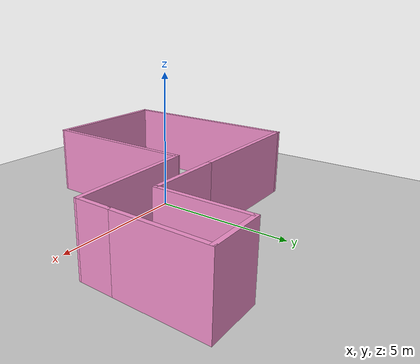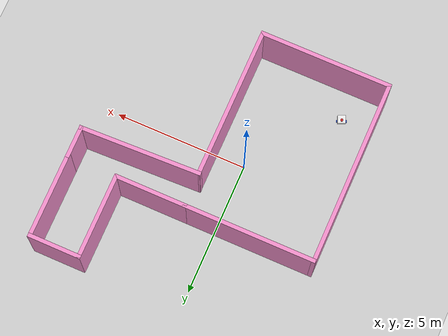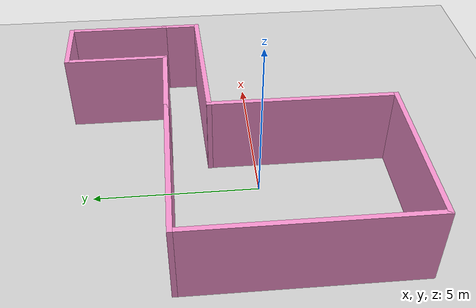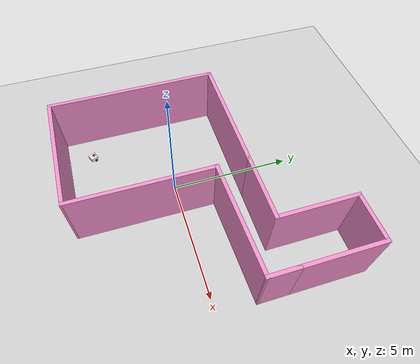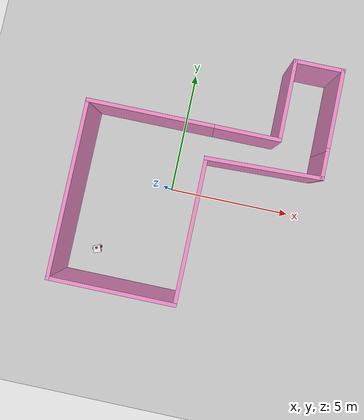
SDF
<sdf version="1.7">
 <world name="default">
  <light name="sun" type="directional">
   <pose>0 0 10 0 -0 0</pose>
   <diffuse>0.8 0.8 0.8 1</diffuse>
   <specular>0.2 0.2 0.2 1</specular>
   <attenuation>
    <range>1000</range>
    <constant>0.9</constant>
    <linear>0.01</linear>
    <quadratic>0.001</quadratic>
   </attenuation>
   <direction>-0.5 0.1 -0.9</direction>
   <spot><inner_angle>0</inner_angle><outer_angle>0</outer_angle><falloff>0</falloff></spot>
  </light>
  <model name="ground_plane">
   <static>1</static>
   <link name="link">
    <collision name="collision">
     <geometry><plane><normal>0 0 1</normal><size>100 100</size></plane></geometry>
     <surface><friction><ode><mu>100</mu><mu2>50</mu2></ode></friction></surface>
    </collision>
    <visual name="visual">
     <cast_shadows>0</cast_shadows>
     <geometry><plane><normal>0 0 1</normal><size>100 100</size></plane></geometry>
     <material>
      <script><uri>file://media/materials/scripts/gazebo.material</uri><name>Gazebo/Grey</name></script>
     </material>
    </visual>
   </link>
  </model>
  <gravity>0 0 -9.8</gravity>
  <magnetic_field>6e-06 2.3e-05 -4.2e-05</magnetic_field>
  <atmosphere type="adiabatic"/>
  <physics type="ode">
   <max_step_size>0.001</max_step_size>
   <real_time_factor>1</real_time_factor>
   <real_time_update_rate>1000</real_time_update_rate>
  </physics>
  <scene><ambient>0.4 0.4 0.4 1</ambient><background>0.7 0.7 0.7 1</background><shadows>1</shadows></scene>
  <audio><device>default</device></audio>
  <spherical_coordinates>
   <surface_model>EARTH_WGS84</surface_model>
   <latitude_deg>0</latitude_deg>
   <longitude_deg>0</longitude_deg>
   <elevation>0</elevation>
   <heading_deg>0</heading_deg>
  </spherical_coordinates>
  <model name="my_bot">
   <link name="base_link">
    <inertial>
     <pose>0.055714 0 0.078571 0 -0 0</pose>
     <mass>0.7</mass>
     <inertia>
      <ixx>0.0064169</ixx>
      <ixy>0</ixy>
      <ixz>0.00118929</ixz>
      <iyy>0.00745405</iyy>
      <iyz>0</iyz>
      <izz>0.00876214</izz>
     </inertia>
    </inertial>
    <collision name="base_link_fixed_joint_lump__chassis_collision">
     <pose>0.05 0 0.075 0 -0 0</pose>
     <geometry><box><size>0.3 0.3 0.15</size></box></geometry>
    </collision>
    <collision name="base_link_fixed_joint_lump__caster_wheel_collision_1">
     <pose>0.14 0 0 0 -0 0</pose>
     <geometry><sphere><radius>0.05</radius></sphere></geometry>
     <surface><friction><ode><mu>0.001</mu><mu2>0.001</mu2></ode></friction></surface>
    </collision>
    <collision name="base_link_fixed_joint_lump__laser_frame_collision_2">
     <pose>0 0 0.175 0 -0 0</pose>
     <geometry><cylinder><length>0.04</length><radius>0.05</radius></cylinder></geometry>
    </collision>
    <visual name="base_link_fixed_joint_lump__chassis_visual">
     <pose>0.05 0 0.075 0 -0 0</pose>
     <geometry><box><size>0.3 0.3 0.15</size></box></geometry>
     <material>
      <script><name>Gazebo/White</name><uri>file://media/materials/scripts/gazebo.material</uri></script>
     </material>
    </visual>
    <visual name="base_link_fixed_joint_lump__caster_wheel_visual_1">
     <pose>0.14 0 0 0 -0 0</pose>
     <geometry><sphere><radius>0.05</radius></sphere></geometry>
     <material>
      <script><name>Gazebo/Black</name><uri>file://media/materials/scripts/gazebo.material</uri></script>
     </material>
    </visual>
    <visual name="base_link_fixed_joint_lump__laser_frame_visual_2">
     <pose>0 0 0.175 0 -0 0</pose>
     <geometry><cylinder><length>0.04</length><radius>0.05</radius></cylinder></geometry>
     <material>
      <script><name>Gazebo/Red</name><uri>file://media/materials/scripts/gazebo.material</uri></script>
     </material>
    </visual>
    <sensor name="laser" type="ray">
     <visualize>1</visualize>
     <update_rate>10</update_rate>
     <ray>
      <scan>
       <horizontal>
        <samples>360</samples>
        <min_angle>-3.14</min_angle>
        <max_angle>3.14</max_angle>
        <resolution>1</resolution>
       </horizontal>
       <vertical><samples>1</samples><min_angle>0</min_angle><max_angle>0</max_angle></vertical>
      </scan>
      <range><min>0.3</min><max>12</max></range>
     </ray>
     <plugin name="laser_controller" filename="libgazebo_ros_ray_sensor.so">
      <ros><argument>~/out:=scan</argument></ros>
      <output_type>sensor_msgs/LaserScan</output_type>
      <frame_name>laser_frame</frame_name>
     </plugin>
     <pose>0 0 0.175 0 -0 0</pose>
    </sensor>
   </link>
   <joint name="left_wheel_joint" type="revolute">
    <pose relative_to="base_link">0 0.175 0 -1.5708 0 0</pose>
    <parent>base_link</parent>
    <child>left_wheel</child>
    <axis>
     <xyz>0 0 1</xyz>
     <limit><lower>-1e+16</lower><upper>1e+16</upper></limit>
     <dynamics><spring_reference>0</spring_reference><spring_stiffness>0</spring_stiffness></dynamics>
    </axis>
   </joint>
   <link name="left_wheel">
    <pose relative_to="left_wheel_joint">0 0 0 0 -0 0</pose>
    <inertial>
     <mass>0.1</mass>
     <inertia>
      <ixx>7.58333e-05</ixx>
      <ixy>0</ixy>
      <ixz>0</ixz>
      <iyy>7.58333e-05</iyy>
      <iyz>0</iyz>
      <izz>0.000125</izz>
     </inertia>
    </inertial>
    <collision name="left_wheel_collision">
     <geometry><cylinder><length>0.04</length><radius>0.05</radius></cylinder></geometry>
    </collision>
    <visual name="left_wheel_visual">
     <geometry><cylinder><length>0.04</length><radius>0.05</radius></cylinder></geometry>
     <material>
      <script><name>Gazebo/Blue</name><uri>file://media/materials/scripts/gazebo.material</uri></script>
     </material>
    </visual>
   </link>
   <joint name="right_wheel_joint" type="revolute">
    <pose relative_to="base_link">0 -0.175 0 1.5708 -0 0</pose>
    <parent>base_link</parent>
    <child>right_wheel</child>
    <axis>
     <xyz>0 0 -1</xyz>
     <limit><lower>-1e+16</lower><upper>1e+16</upper></limit>
     <dynamics><spring_reference>0</spring_reference><spring_stiffness>0</spring_stiffness></dynamics>
    </axis>
   </joint>
   <link name="right_wheel">
    <pose relative_to="right_wheel_joint">0 0 0 0 -0 0</pose>
    <inertial>
     <mass>0.1</mass>
     <inertia>
      <ixx>7.58333e-05</ixx>
      <ixy>0</ixy>
      <ixz>0</ixz>
      <iyy>7.58333e-05</iyy>
      <iyz>0</iyz>
      <izz>0.000125</izz>
     </inertia>
    </inertial>
    <collision name="right_wheel_collision">
     <geometry><cylinder><length>0.04</length><radius>0.05</radius></cylinder></geometry>
    </collision>
    <visual name="right_wheel_visual">
     <geometry><cylinder><length>0.04</length><radius>0.05</radius></cylinder></geometry>
     <material>
      <script><name>Gazebo/Blue</name><uri>file://media/materials/scripts/gazebo.material</uri></script>
     </material>
    </visual>
   </link>
   <static>0</static>
   <plugin name="diff_drive" filename="libgazebo_ros_diff_drive.so">
    <left_joint>left_wheel_joint</left_joint>
    <right_joint>right_wheel_joint</right_joint>
    <wheel_separation>0.35</wheel_separation>
    <wheel_diameter>0.1</wheel_diameter>
    <max_wheel_torque>200</max_wheel_torque>
    <max_wheel_acceleration>10.0</max_wheel_acceleration>
    <odometry_frame>odom</odometry_frame>
    <robot_base_frame>base_link</robot_base_frame>
    <publish_odom>1</publish_odom>
    <publish_odom_tf>1</publish_odom_tf>
    <publish_wheel_tf>1</publish_wheel_tf>
   </plugin>
   <pose>-2.56886 -3.02733 0.049995 2.7e-05 -4e-06 -1.1789</pose>
  </model>
  <model name="Untitled">
   <pose>0.938866 0.784873 0 0 -0 0</pose>
   <link name="Wall_1">
    <collision name="Wall_1_Collision">
     <geometry><box><size>3.25 0.15 2.5</size></box></geometry>
     <pose>0 0 1.25 0 -0 0</pose>
    </collision>
    <visual name="Wall_1_Visual">
     <pose>0 0 1.25 0 -0 0</pose>
     <geometry><box><size>3.25 0.15 2.5</size></box></geometry>
     <material>
      <script><uri>file://media/materials/scripts/gazebo.material</uri><name>Gazebo/Grey</name></script>
      <ambient>0.94902 0.564706 0.796078 1</ambient>
     </material>
     <meta><layer>0</layer></meta>
    </visual>
    <pose>2.79876 3.42512 0 0 -0 1.5708</pose>
   </link>
   <link name="Wall_10">
    <collision name="Wall_10_Collision">
     <geometry><box><size>4.59253 0.15 2.5</size></box></geometry>
     <pose>0 0 1.25 0 -0 0</pose>
    </collision>
    <visual name="Wall_10_Visual">
     <pose>0 0 1.25 0 -0 0</pose>
     <geometry><box><size>4.59253 0.15 2.5</size></box></geometry>
     <material>
      <script><uri>file://media/materials/scripts/gazebo.material</uri><name>Gazebo/Grey</name></script>
      <ambient>0.94902 0.564706 0.796078 1</ambient>
     </material>
     <meta><layer>0</layer></meta>
    </visual>
    <pose>2.42876 0.700125 0 0 -0 0.033771</pose>
   </link>
   <link name="Wall_11">
    <collision name="Wall_11_Collision">
     <geometry><box><size>1.25 0.15 2.5</size></box></geometry>
     <pose>0 0 1.25 0 -0 0</pose>
    </collision>
    <visual name="Wall_11_Visual">
     <pose>0 0 1.25 0 -0 0</pose>
     <geometry><box><size>1.25 0.15 2.5</size></box></geometry>
     <material>
      <script><uri>file://media/materials/scripts/gazebo.material</uri><name>Gazebo/Grey</name></script>
      <ambient>0.94902 0.564706 0.796078 1</ambient>
     </material>
     <meta><layer>0</layer></meta>
    </visual>
    <pose>4.64876 1.32513 0 0 -0 1.5708</pose>
   </link>
   <link name="Wall_2">
    <collision name="Wall_2_Collision">
     <geometry><box><size>2 0.15 2.5</size></box></geometry>
     <pose>0 0 1.25 0 -0 0</pose>
    </collision>
    <visual name="Wall_2_Visual">
     <pose>0 0 1.25 0 -0 0</pose>
     <geometry><box><size>2 0.15 2.5</size></box></geometry>
     <material>
      <script><uri>file://media/materials/scripts/gazebo.material</uri><name>Gazebo/Grey</name></script>
      <ambient>0.94902 0.564706 0.796078 1</ambient>
     </material>
     <meta><layer>0</layer></meta>
    </visual>
    <pose>3.72376 4.97513 0 0 -0 0</pose>
   </link>
   <link name="Wall_3">
    <collision name="Wall_3_Collision">
     <geometry><box><size>3.25 0.15 2.5</size></box></geometry>
     <pose>0 0 1.25 0 -0 0</pose>
    </collision>
    <visual name="Wall_3_Visual">
     <pose>0 0 1.25 0 -0 0</pose>
     <geometry><box><size>3.25 0.15 2.5</size></box></geometry>
     <material>
      <script><uri>file://media/materials/scripts/gazebo.material</uri><name>Gazebo/Grey</name></script>
      <ambient>0.94902 0.564706 0.796078 1</ambient>
     </material>
     <meta><layer>0</layer></meta>
    </visual>
    <pose>4.64876 3.42512 0 0 -0 -1.5708</pose>
   </link>
   <link name="Wall_5">
    <collision name="Wall_5_Collision">
     <geometry><box><size>2.75 0.15 2.5</size></box></geometry>
     <pose>0 0 1.25 0 -0 0</pose>
    </collision>
    <visual name="Wall_5_Visual">
     <pose>0 0 1.25 0 -0 0</pose>
     <geometry><box><size>2.75 0.15 2.5</size></box></geometry>
     <material>
      <script><uri>file://media/materials/scripts/gazebo.material</uri><name>Gazebo/Grey</name></script>
      <ambient>0.94902 0.564706 0.796078 1</ambient>
     </material>
     <meta><layer>0</layer></meta>
    </visual>
    <pose>1.49876 1.87512 0 0 -0 3.14159</pose>
   </link>
   <link name="Wall_6">
    <collision name="Wall_6_Collision">
     <geometry><box><size>5 0.15 2.5</size></box></geometry>
     <pose>0 0 1.25 0 -0 0</pose>
    </collision>
    <visual name="Wall_6_Visual">
     <pose>0 0 1.25 0 -0 0</pose>
     <geometry><box><size>5 0.15 2.5</size></box></geometry>
     <material>
      <script><uri>file://media/materials/scripts/gazebo.material</uri><name>Gazebo/Grey</name></script>
      <ambient>0.94902 0.564706 0.796078 1</ambient>
     </material>
     <meta><layer>0</layer></meta>
    </visual>
    <pose>-2.22625 1.87512 0 0 -0 3.14159</pose>
   </link>
   <link name="Wall_7">
    <collision name="Wall_7_Collision">
     <geometry><box><size>7 0.15 2.5</size></box></geometry>
     <pose>0 0 1.25 0 -0 0</pose>
    </collision>
    <visual name="Wall_7_Visual">
     <pose>0 0 1.25 0 -0 0</pose>
     <geometry><box><size>7 0.15 2.5</size></box></geometry>
     <material>
      <script><uri>file://media/materials/scripts/gazebo.material</uri><name>Gazebo/Grey</name></script>
      <ambient>0.94902 0.564706 0.796078 1</ambient>
     </material>
     <meta><layer>0</layer></meta>
    </visual>
    <pose>-4.65125 -1.54987 0 0 -0 -1.5708</pose>
   </link>
   <link name="Wall_8">
    <collision name="Wall_8_Collision">
     <geometry><box><size>5 0.15 2.5</size></box></geometry>
     <pose>0 0 1.25 0 -0 0</pose>
    </collision>
    <visual name="Wall_8_Visual">
     <pose>0 0 1.25 0 -0 0</pose>
     <geometry><box><size>5 0.15 2.5</size></box></geometry>
     <material>
      <script><uri>file://media/materials/scripts/gazebo.material</uri><name>Gazebo/Grey</name></script>
      <ambient>0.94902 0.564706 0.796078 1</ambient>
     </material>
     <meta><layer>0</layer></meta>
    </visual>
    <pose>-2.22625 -4.97487 0 0 -0 0</pose>
   </link>
   <link name="Wall_9">
    <collision name="Wall_9_Collision">
     <geometry><box><size>5.75 0.15 2.5</size></box></geometry>
     <pose>0 0 1.25 0 -0 0</pose>
    </collision>
    <visual name="Wall_9_Visual">
     <pose>0 0 1.25 0 -0 0</pose>
     <geometry><box><size>5.75 0.15 2.5</size></box></geometry>
     <material>
      <script><uri>file://media/materials/scripts/gazebo.material</uri><name>Gazebo/Grey</name></script>
      <ambient>0.94902 0.564706 0.796078 1</ambient>
     </material>
     <meta><layer>0</layer></meta>
    </visual>
    <pose>0.208755 -2.17488 0 0 -0 1.56723</pose>
   </link>
   <static>1</static>
  </model>
 </world>
</sdf>
